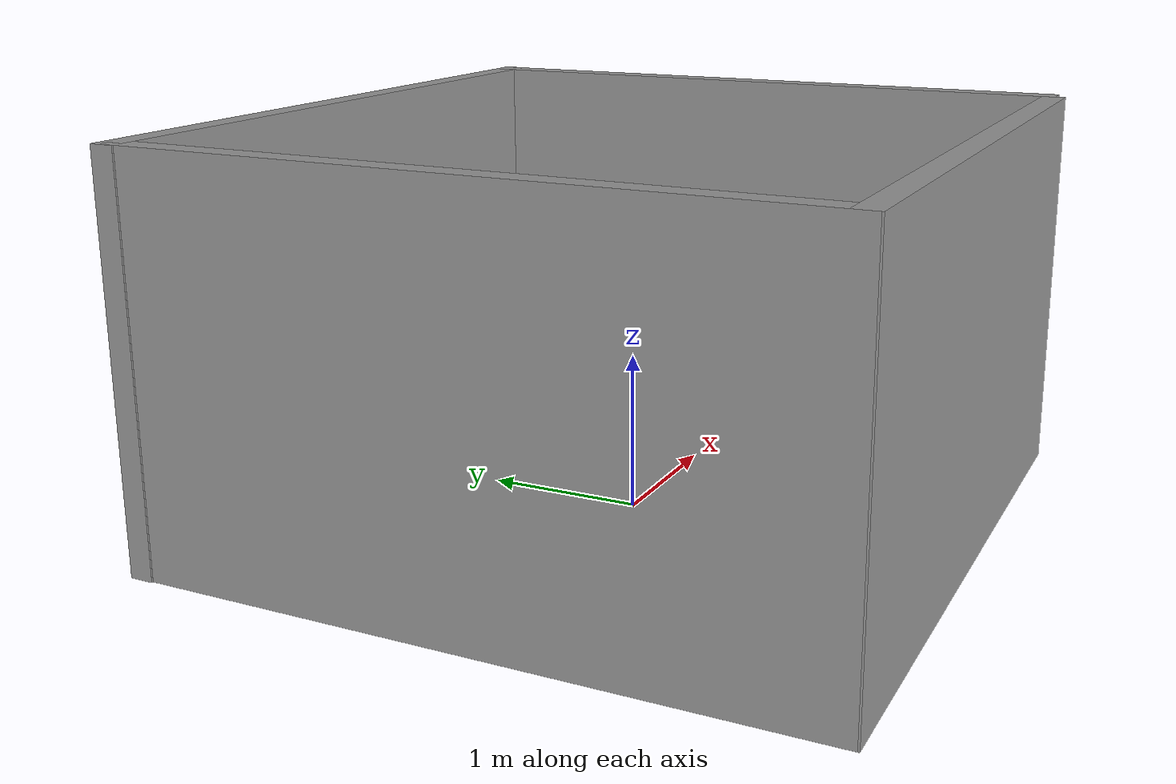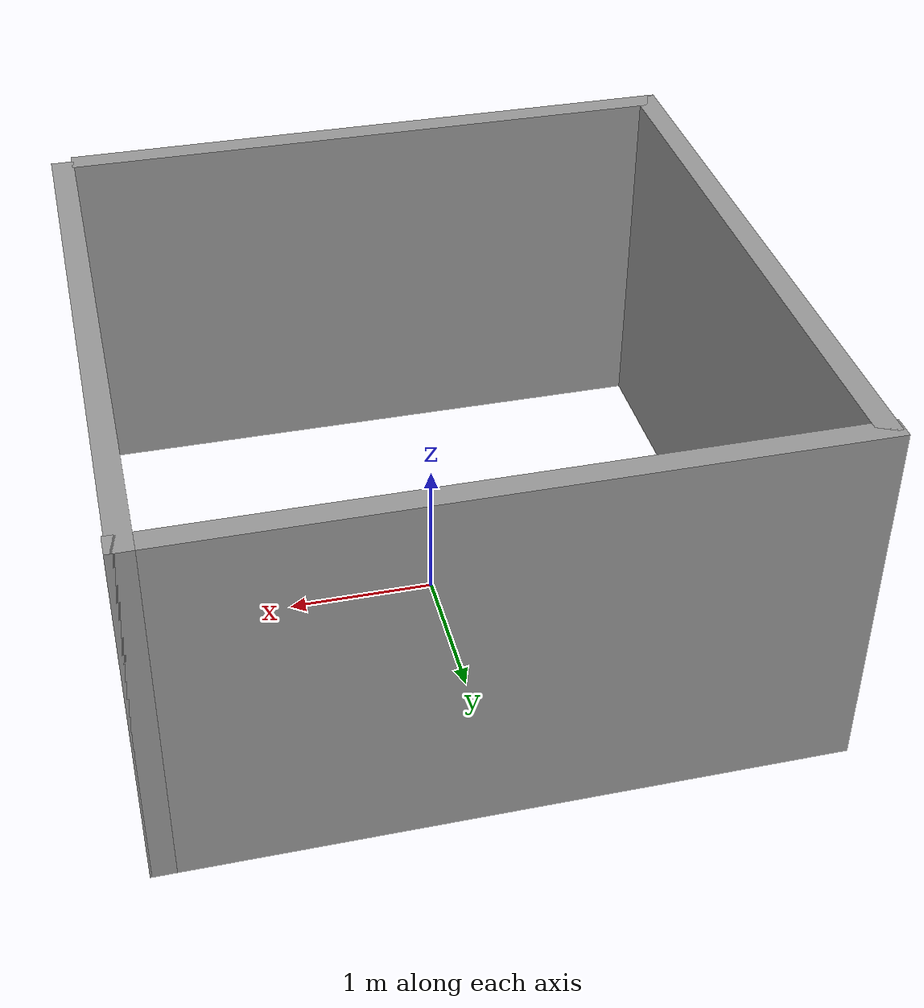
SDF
<?xml version='1.0'?>
<sdf version='1.7'>
  <model name='wall_map'>
    <pose>0 -0.0185 0 0 -0 0</pose>
    <link name='Wall_1'>
      <collision name='Wall_1_Collision'>
        <geometry>
          <box>
            <size>4.25 0.15 2.5</size>
          </box>
        </geometry>
        <pose>0 0 1.25 0 -0 0</pose>
      </collision>
      <visual name='Wall_1_Visual'>
        <pose>0 0 1.25 0 -0 0</pose>
        <geometry>
          <box>
            <size>4.25 0.15 2.5</size>
          </box>
        </geometry>
        <material>
          <script>
            <uri>file://media/materials/scripts/gazebo.material</uri>
            <name>Gazebo/Grey</name>
          </script>
          <ambient>1 1 1 1</ambient>
        </material>
        <meta>
          <layer>0</layer>
        </meta>
      </visual>
      <pose>-0.069 -2.0815 0 0 -0 3.14159</pose>
    </link>
    <link name='Wall_3'>
      <collision name='Wall_3_Collision'>
        <geometry>
          <box>
            <size>4.25 0.15 2.5</size>
          </box>
        </geometry>
        <pose>0 0 1.25 0 -0 0</pose>
      </collision>
      <visual name='Wall_3_Visual'>
        <pose>0 0 1.25 0 -0 0</pose>
        <geometry>
          <box>
            <size>4.25 0.15 2.5</size>
          </box>
        </geometry>
        <material>
          <script>
            <uri>file://media/materials/scripts/gazebo.material</uri>
            <name>Gazebo/Grey</name>
          </script>
          <ambient>1 1 1 1</ambient>
        </material>
        <meta>
          <layer>0</layer>
        </meta>
      </visual>
      <pose>-2.119 -0.02 0 0 -0 -1.5708</pose>
    </link>
    <link name='Wall_5'>
      <collision name='Wall_5_Collision'>
        <geometry>
          <box>
            <size>4.411 0.15 2.5</size>
          </box>
        </geometry>
        <pose>0 0 1.25 0 -0 0</pose>
      </collision>
      <visual name='Wall_5_Visual'>
        <pose>0 0 1.25 0 -0 0</pose>
        <geometry>
          <box>
            <size>4.411 0.15 2.5</size>
          </box>
        </geometry>
        <material>
          <script>
            <uri>file://media/materials/scripts/gazebo.material</uri>
            <name>Gazebo/Grey</name>
          </script>
          <ambient>1 1 1 1</ambient>
        </material>
        <meta>
          <layer>0</layer>
        </meta>
      </visual>
      <pose>0 2.0815 0 0 -0 0</pose>
    </link>
    <link name='Wall_7'>
      <collision name='Wall_7_Collision'>
        <geometry>
          <box>
            <size>4.25 0.15 2.5</size>
          </box>
        </geometry>
        <pose>0 0 1.25 0 -0 0</pose>
      </collision>
      <visual name='Wall_7_Visual'>
        <pose>0 0 1.25 0 -0 0</pose>
        <geometry>
          <box>
            <size>4.25 0.15 2.5</size>
          </box>
        </geometry>
        <material>
          <script>
            <uri>file://media/materials/scripts/gazebo.material</uri>
            <name>Gazebo/Grey</name>
          </script>
          <ambient>1 1 1 1</ambient>
        </material>
        <meta>
          <layer>0</layer>
        </meta>
      </visual>
      <pose>2.119 0.0315 0 0 -0 -1.5708</pose>
    </link>
    <static>1</static>
  </model>
</sdf>
